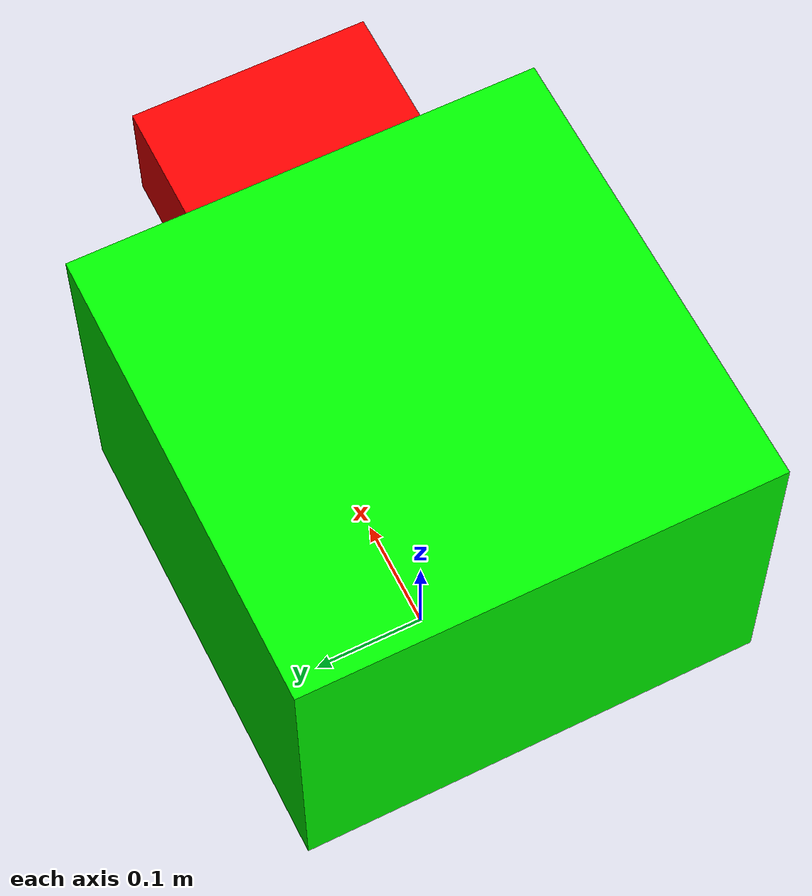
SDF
<?xml version="1.0" ?>
<sdf version="1.6">
  <model name="simple_bot">

    <pose>0 0 0.3 0 0 0</pose>

    <link name="base_link">

      <inertial>
        <mass>1.0</mass>
      </inertial>

      <!-- BODY -->
      <collision name="collision">
        <geometry>
          <box><size>0.4 0.4 0.3</size></box>
        </geometry>
      </collision>

      <visual name="body_visual">
        <geometry>
          <box><size>0.4 0.4 0.3</size></box>
        </geometry>
        <material>
          <ambient>0 1 0 1</ambient>
        </material>
      </visual>

      <!-- FRONT MARKER -->
      <visual name="front_marker">
        <pose>0.25 0 0.1 0 0 0</pose>
        <geometry>
          <box><size>0.1 0.2 0.1</size></box>
        </geometry>
        <material>
          <ambient>1 0 0 1</ambient>
        </material>
      </visual>

      <!-- 🔥 IMPROVED LIGHTWEIGHT LIDAR -->
      <sensor name="lidar" type="ray">
        <pose>0.2 0 0.25 0 0 0</pose>
        <update_rate>5</update_rate>

        <ray>
          <scan>
            <horizontal>
              <samples>30</samples>        <!-- FIXED -->
              <min_angle>-0.8</min_angle>  <!-- FIXED -->
              <max_angle>0.8</max_angle>
            </horizontal>
          </scan>

          <range>
            <min>0.1</min>
            <max>5.0</max>
          </range>
        </ray>

        <plugin name="gazebo_ros_ray_sensor" filename="libgazebo_ros_ray_sensor.so">
          <ros><namespace>/</namespace></ros>
          <output_type>sensor_msgs/LaserScan</output_type>
          <topic_name>/scan</topic_name>
          <frame_name>base_link</frame_name>
        </plugin>
      </sensor>

      <!-- 🔥 TINY CAMERA -->
      <sensor name="camera" type="camera">
        <pose>0.3 0 0.35 0 1.2 0</pose>
        <update_rate>5</update_rate>

        <camera>
          <horizontal_fov>1.0</horizontal_fov>

          <image>
            <width>64</width>
            <height>48</height>
            <format>R8G8B8</format>
          </image>

          <clip>
            <near>0.1</near>
            <far>10</far>
          </clip>
        </camera>

        <plugin name="gazebo_ros_camera" filename="libgazebo_ros_camera.so">
          <ros><namespace>/</namespace></ros>
          <camera_name>camera</camera_name>
          <image_topic_name>/camera/image_raw</image_topic_name>
          <frame_name>camera_link</frame_name>
        </plugin>
      </sensor>

    </link>

    <!-- MOVEMENT -->
    <plugin name="planar_move" filename="libgazebo_ros_planar_move.so">
      <ros><namespace>/</namespace></ros>
      <command_topic>cmd_vel</command_topic>
      <odometry_topic>odom</odometry_topic>
    </plugin>

  </model>
</sdf>
